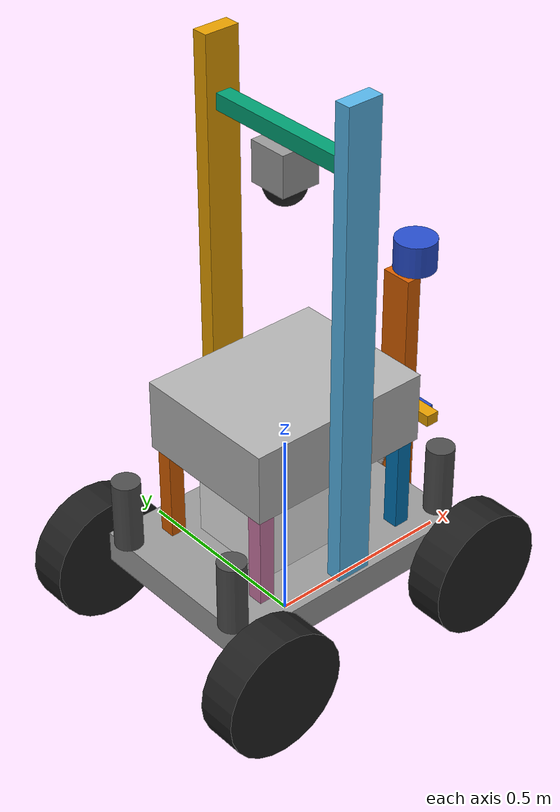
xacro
<?xml version="1.0" ?>

<!-- This Xacro file uses the custom plugin for skid steer drive
      for a rover robot model -->
<!-- Author Muhammad Mursaleen -->
<!-- email  muhammadmursaleen09@gmail.com -->

<robot name="custom_skid_steer_drive" xmlns:xacro="http://ros.org/wiki/xacro">

   <!-- define the name of your package below -->
    <xacro:property name="package_name" default="rover_description"/>

    <!--  define the name of your robot below-->
    <xacro:property name="robot_name" default="rover_robot"/>

    <!-- !!!!!! Above things are important, so use them in correct way !!!!!! -->

  <!-- Add the defination of robot with links and joints  -->
    <xacro:include filename="$(find ${package_name})/urdf/rover_macro.xacro" />

  <!-- Sensors -->

    <xacro:include filename="$(find ${package_name})/urdf/robosense_bpearl.xacro" />
    <!-- to trun gazebo plugins for lidar bpearl uncomment the line below   -->

    <xacro:include filename="$(find ${package_name})/urdf/robosense_rs_16.xacro" />
    <!-- to trun gazebo plugins for lidar rs_16 uncomment the line below   -->
    <xacro:lidar_rs_16_sensor_plugin/>

    <xacro:include filename="$(find ${package_name})/urdf/intelrealsense_t265.xacro" />
    <!-- to trun gazebo plugins for camera t_265 uncomment the line below   -->

  <!-- Add custom plugin for skid steer drive -->
    <xacro:include filename="$(find ${package_name})/urdf/wheel_rps_controller_macro.xacro" />

</robot>

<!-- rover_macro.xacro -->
<!-- This is a xacro file that contains defination of all links & joints
      for a rover robot model -->
<!-- Author Muhammad Mursaleen -->
<!-- email  muhammadmursaleen09@gmail.com -->

  <robot name="rover" xmlns:xacro="http://ros.org/wiki/xacro">

    <!-- properties, materials & inertial parameters -->
    <xacro:include filename="$(find ${package_name})/urdf/inertia_parameters_macro.xacro" />
    <xacro:include filename="$(find ${package_name})/urdf/properties.xacro" />
    <xacro:include filename="$(find ${package_name})/urdf/materials.xacro" />

    <!-- Links & Joints -->

  <!-- Define a macro named "empty_link" as a base link-->
  <xacro:macro name="empty_link" params="link_name">
    <link name="${link_name}">
      <origin xyz="0 0 0"/>
    </link>
  </xacro:macro>

  <!-- Define parent link as an empty link at (0, 0, 0) -->
  <xacro:empty_link link_name="base_link"/>

  <!-- Define a macro named "robot_base_link" for a link with a box shape at
  (0 0 ${base_height} ) -->
  <xacro:macro name="robot_base_link" params=" parent">
    <link name="${robot_name}_base_link">
      <origin xyz="0 0 0"/>
      <visual>
        <geometry>
          <box size="0.67 0.495 0.08"/>
        </geometry>
      </visual>

      <collision>
        <geometry>
          <box size="0.67 0.495 0.08"/>
        </geometry>
      </collision>

      <xacro:box_inertia m="${base_mass}"  d="0.67 " w="0.495" h="0.08"/>

      <material name="Gray">
          <color rgba="0.5 0.5 0.5 1.0"/>
        </material>

    </link>

    <!-- Add a joint between parent and ${robot_name}_base_link -->
    <joint name="${parent}_to_${robot_name}_base_link" type="fixed">
      <parent link="${parent}"/>
      <child link="${robot_name}_base_link"/>
      <origin xyz="0 0 ${base_height}"/>
    </joint>
  </xacro:macro>

  <!-- Use the "robot_base_link" macro to create a link named "my_robot_base_link" -->
  <xacro:robot_base_link  parent="base_link"/>

  <!-- Wheel Started -->
  <!-- Define a macro named "Wheel" for a motor link and joint -->
    <xacro:macro name="wheel" params=" f_or_b l_or_r f_or_b_reflect l_or_r_reflect parent">
      <link name="${robot_name}_${l_or_r}_${f_or_b}_wheel_link">
        <origin xyz="0 0 0"/>
        <visual>
          <geometry>
            <cylinder radius="${wheel_radius}" length="${wheel_lenght}"/>
          </geometry>
        </visual>
        <collision>
          <geometry>
            <cylinder radius="${wheel_radius}" length="0.01"/>
          </geometry>
           <surface>
            <!-- This friction pamareter don't contain reliable data!! -->
            <friction>
              <ode>
                <mu>100000.0</mu>
                <mu2>100000.0</mu2>
                <fdir1>0 0 0</fdir1>
                <slip1>0.0</slip1>
                <slip2>0.0</slip2>
              </ode>
            </friction>
            <contact>
              <ode>
                <soft_cfm>0</soft_cfm>
                <soft_erp>0.2</soft_erp>
                <kp>1e+5</kp>
                <kd>1</kd>
                <max_vel>0.01</max_vel>
                <min_depth>0.001</min_depth>
              </ode>
            </contact>
          </surface>
        </collision>
        <xacro:cylinder_inertia m="${wheel_mass}" r="${wheel_radius}" h="${wheel_lenght}"/>
        <material name="Gray">
          <color rgba="1 1 1 1.0"/>
        </material>

      </link>

      <!-- Add a joint between parent and wheel_link -->
      <joint name="${robot_name}_${l_or_r}_${f_or_b}_wheel_joint" type="continuous">
        <parent link="${parent}"/>
        <child link="${robot_name}_${l_or_r}_${f_or_b}_wheel_link"/>
        <origin xyz="${f_or_b_reflect} ${l_or_r_reflect} ${wheel_radius}" rpy="1.5708 0 0"/>
        <axis xyz="0 0 -1" />
        <limit effort="88" velocity="14" />

      </joint>
    </xacro:macro>

    <!-- front left wheel-->
    <xacro:wheel  parent="base_link" l_or_r="left" f_or_b="front"
        l_or_r_reflect="${wheel_left_pose}" f_or_b_reflect="${wheel_front_pose}"/>

    <!-- Front Right wheel -->
    <xacro:wheel  parent="base_link" l_or_r="right" f_or_b="front"
        l_or_r_reflect="${-wheel_left_pose}" f_or_b_reflect="${wheel_front_pose}"/>

    <!-- back left wheel-->
    <xacro:wheel  parent="base_link" l_or_r="left" f_or_b="back"
        l_or_r_reflect="${wheel_left_pose}" f_or_b_reflect="${-wheel_front_pose}"/>

    <!-- Back Right wheel -->
    <xacro:wheel  parent="base_link" l_or_r="right" f_or_b="back"
        l_or_r_reflect="${-wheel_left_pose}" f_or_b_reflect="${-wheel_front_pose}"/>

    <!-- Wheel ended -->

  <!-- motor Started -->
  <!-- Define a macro named "motor" for a motor link and joint -->
    <xacro:macro name="motor" params=" f_or_b l_or_r f_or_b_reflect l_or_r_reflect parent">
      <link name="${robot_name}_${l_or_r}_${f_or_b}_motor_link">
        <origin xyz="0 0 0"/>
        <visual>
          <geometry>
            <cylinder radius="${motor_radius}" length="${motor_lenght}"/>
          </geometry>
        </visual>
        <collision>
          <geometry>
            <cylinder radius="${motor_radius}" length="${motor_lenght}"/>
          </geometry>
        </collision>
        <xacro:cylinder_inertia m="${motor_mass}" r="${motor_radius}" h="${motor_lenght}"/>
        <material name="Gray">
          <color rgba="0.5 0.5 0.5 1.0"/>
        </material>
      </link>
      <!-- Add a joint between parent and motor_link  -->
      <joint name="${robot_name}_${l_or_r}_${f_or_b}_motor_joint" type="fixed">
        <parent link="${parent}"/>
        <child link="${robot_name}_${l_or_r}_${f_or_b}_motor_link"/>
        <origin xyz="${f_or_b_reflect} ${l_or_r_reflect} ${motor_height}" rpy="0 0 0"/>
      </joint>
    </xacro:macro>

    <!-- front left motor-->
    <xacro:motor  parent="${robot_name}_base_link" l_or_r="left" f_or_b="front"
        l_or_r_reflect="${motor_left_pose}" f_or_b_reflect="${motor_front_pose}"/>

    <!-- Front Right motor -->
    <xacro:motor  parent="${robot_name}_base_link" l_or_r="right" f_or_b="front"
        l_or_r_reflect="${-motor_left_pose}" f_or_b_reflect="${motor_front_pose}"/>

    <!-- back left motor-->
    <xacro:motor  parent="${robot_name}_base_link" l_or_r="left" f_or_b="back"
        l_or_r_reflect="${motor_left_pose}" f_or_b_reflect="${-motor_front_pose}"/>

    <!-- Back Right motor -->
    <xacro:motor  parent="${robot_name}_base_link" l_or_r="right" f_or_b="back"
        l_or_r_reflect="${-motor_left_pose}" f_or_b_reflect="${-motor_front_pose}"/>

    <!-- motor ended -->

  <!-- Battery -->
  <!-- Define a macro named "battery" for a link with a box shape at
  (0 0 ${battery_height}) -->
  <xacro:macro name="battery" params=" parent">
    <link name="${robot_name}_battery_link">
      <origin xyz="0 0 0"/>
      <visual>
        <geometry>
          <box size="0.32 0.24 0.2"/>
        </geometry>
      </visual>
      <collision>
        <geometry>
          <box size="0.32 0.24 0.2"/>
        </geometry>
      </collision>
      <xacro:box_inertia m="${battery_mass}"  d="0.32 " w="0.24" h="0.2"/>
      <material name="Gray">
          <color rgba="0.5 0.5 0.5 1.0"/>
        </material>
    </link>

    <!-- Add a joint between parent and ${robot_name}_base_link -->
        <joint name="${parent}_to_${robot_name}_battery_link" type="fixed">
          <parent link="${parent}"/>
          <child link="${robot_name}_battery_link"/>
          <origin xyz="0 0 ${battery_height}"/>
        </joint>
    </xacro:macro>

    <!-- Use the "robot_base_link" macro to create a link for battery -->
    <xacro:battery  parent="${robot_name}_base_link"/>

    <!-- Battery Ended-->

    <!-- side_bar_ Started for the support of controll Box-->
    <!-- Define a macro named "Wheel" for a side_bar_ link and joint -->
    <xacro:macro name="side_bar" params=" f_or_b l_or_r f_or_b_reflect l_or_r_reflect parent">
      <link name="${robot_name}_${l_or_r}_${f_or_b}_side_bar_link">
        <origin xyz="0 0 0"/>
        <visual>
          <geometry>
            <box size="0.04 0.04 0.24"/>
          </geometry>
        </visual>
        <collision>
          <geometry>
            <box size="0.04 0.04 0.24"/>
          </geometry>
        </collision>
        <xacro:box_inertia m="${side_bar_mass}"  d="0.04 " w="0.04" h="0.24"/>
        <material name="Gray">
          <color rgba="0.5 0.5 0.5 1.0"/>
        </material>
      </link>

     <!-- Add a joint between parent and side_bar_link  -->
    <joint name="${robot_name}_${l_or_r}_${f_or_b}_side_bar_joint" type="fixed">
        <parent link="${parent}"/>
        <child link="${robot_name}_${l_or_r}_${f_or_b}_side_bar_link"/>
        <origin xyz="${f_or_b_reflect} ${l_or_r_reflect} ${side_bar_height}" rpy="0 0 0"/>
    </joint>
    </xacro:macro>

    <!-- front left side_bar-->
    <xacro:side_bar  parent="${robot_name}_base_link" l_or_r="left" f_or_b="front"
        l_or_r_reflect="${side_bar_left_pose}" f_or_b_reflect="${side_bar_front_pose}"/>

    <!-- Front Right side_bar -->
    <xacro:side_bar  parent="${robot_name}_base_link" l_or_r="right" f_or_b="front"
        l_or_r_reflect="${-side_bar_left_pose}" f_or_b_reflect="${side_bar_front_pose}"/>

    <!-- back left side_bar-->
    <xacro:side_bar  parent="${robot_name}_base_link" l_or_r="left" f_or_b="back"
        l_or_r_reflect="${side_bar_left_pose}" f_or_b_reflect="${-side_bar_front_pose}"/>

    <!-- Back Right side_bar -->
    <xacro:side_bar  parent="${robot_name}_base_link" l_or_r="right" f_or_b="back"
        l_or_r_reflect="${-side_bar_left_pose}" f_or_b_reflect="${-side_bar_front_pose}"/>

    <!-- side_bar ended -->

    <!-- controller_box -->
    <!-- Define a macro named "robot_base_link" for a link with a box shape at (0, 1, 1) -->
    <xacro:macro name="controller_box" params=" parent">
      <link name="${robot_name}_controller_box_link">
        <origin xyz="0 0 0"/>
        <visual>
          <geometry>
            <box size="0.48 0.38 0.18"/>
          </geometry>
        </visual>
        <collision>
          <geometry>
            <box size="0.48 0.38 0.18"/>
          </geometry>
        </collision>
        <xacro:box_inertia m="${controller_box_mass}"  d="0.48 " w="0.38" h="0.18"/>
        <material name="Gray">
            <color rgba="0.5 0.5 0.5 1.0"/>
          </material>
      </link>

    <!-- Add a joint between parent and ${robot_name}_base_link -->
      <joint name="${parent}_to_${robot_name}_controller_box_link" type="fixed">
        <parent link="${parent}"/>
        <child link="${robot_name}_controller_box_link"/>
        <origin xyz="0 0 ${controller_box_height}"/>
      </joint>
    </xacro:macro>

    <!-- Use the "robot_base_link" macro to create a link named "my_robot_base_link" -->
    <xacro:controller_box  parent="${robot_name}_base_link"/>

    <!-- controller_box Ended-->

</robot>

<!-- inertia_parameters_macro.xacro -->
<!-- This is a xacro file for defining all inertia parameters for a rover
      robot model -->

<!-- Author Muhammad Mursaleen -->
<!-- email  muhammadmursaleen09@gmail.com -->

<robot name="inertia" xmlns:xacro="http://ros.org/wiki/xacro">

	<!-- Mass of All links in kg -->

    <!-- Approximate Masses  -->
    <xacro:property name="base_mass" default="15"/>
    <xacro:property name="wheel_mass" default="6"/>
    <xacro:property name="motor_mass" default="3"/>
    <xacro:property name="battery_mass" default="20"/>
    <xacro:property name="side_bar_mass" default="1"/>
    <xacro:property name="controller_box_mass" default="1"/>

    <!-- Fake masses -->

    <!-- Masses End-->

    <!-- Define intertial property macros  -->
     <!-- inertia of box: mass = m, d/lenght =x, w/width = y, h/height =z-->
    <xacro:macro name="box_inertia" params="m w h d">
      <inertial>
        <origin xyz="0 0 0" rpy="0 0 0"/>
        <mass value="${m}"/>
        <inertia ixx="${(m/12) * (h*h + w*w)}" ixy="0.0" ixz="0.0" iyy="${(m/12) * (h*h + d*d)}" iyz="0.0" izz="${(m/12) * (w*w + d*d)}"/>
      </inertial>
    </xacro:macro>

    <!-- inertia of cylinder: mass = m, r/radius =x, r/radius = y, h/height =z-->
    <xacro:macro name="cylinder_inertia" params="m r h reflect:=0">
      <inertial>
        <origin xyz="0 0 0" rpy="${reflect*pi/2} 0 0" />
        <mass value="${m}"/>
        <inertia ixx="${(m/12) * (3*r*r + h*h)}" ixy = "0" ixz = "0" iyy="${(m/12) * (3*r*r + h*h)}" iyz = "0" izz="${(m/2) * (r*r)}"/>
      </inertial>
    </xacro:macro>

    <!-- inertia of sphere:  mass = m, r/radius =x, r/radius = y, r/radius =z-->
    <xacro:macro name="sphere_inertia" params="m r">
      <inertial>
        <mass value="${m}"/>
        <inertia ixx="${(2/5) * m * (r*r)}" ixy="0.0" ixz="0.0" iyy="${(2/5) * m * (r*r)}" iyz="0.0" izz="${(2/5) * m * (r*r)}"/>
      </inertial>
    </xacro:macro>

</robot >

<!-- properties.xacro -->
<!-- This is a xacro file for defining all the properties related to lenghts and poses
      for a rover robot model -->
<!-- Author Muhammad Mursaleen -->
<!-- email  muhammadmursaleen09@gmail.com -->

<robot name="properties_for_rover" xmlns:xacro="http://ros.org/wiki/xacro">

    <!-- distances of all the joints from the center of the base link -->
    <!-- & lenghts and radius of different links are defined below -->
    <xacro:property name="wheel_front_pose" default="0.315000"/>
    <xacro:property name="wheel_left_pose" default="0.315000"/>
    <xacro:property name="wheel_radius" default="0.16"/>
    <xacro:property name="wheel_lenght" default="0.1"/>
    <xacro:property name="wheel_separation" default="0.63"/>
    <xacro:property name="base_height" default="0.22"/>

    <xacro:property name="motor_front_pose" default="0.32"/>
    <xacro:property name="motor_left_pose" default="0.19"/>
    <xacro:property name="motor_radius" default="0.035"/>
    <xacro:property name="motor_lenght" default="0.18"/>
    <xacro:property name="motor_height" default="0.13"/>

    <xacro:property name="battery_height" default="0.13"/>

    <xacro:property name="side_bar_front_pose" default="0.21"/>
    <xacro:property name="side_bar_left_pose" default="0.16"/>
    <xacro:property name="side_bar_height" default="0.16"/>

    <xacro:property name="controller_box_height" default="0.37"/>

</robot >

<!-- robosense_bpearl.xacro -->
<!-- This is a xacro file for defining robosense bpearl lidar with all supportive
  links for a rover robot model -->
<!-- Author Muhammad Mursaleen -->
<!-- email  muhammadmursaleen09@gmail.com -->

<robot name="robosense_bpearl" xmlns:xacro="http://ros.org/wiki/xacro">

  <xacro:property name="robot_name" default="rover_robot"/>
  <xacro:property name="side_lidar_bar_front_pose" default="0.0"/>
  <xacro:property name="side_lidar_bar_left_pose" default="0.22"/>
  <xacro:property name="side_lidar_bar_height" default="0.64"/>

  <!-- in future to chnae height of the lidar then change the
    "lidar_top_bar_height value" -->
  <xacro:property name="lidar_top_bar_height" default="1.30"/>
  <xacro:property name="lidar_top_box_height" default="-0.07"/>
  <xacro:property name="lidar_top_bpearl_sensor_height" default="-0.12"/>

  <!-- masses -->
    <xacro:property name="side_lidar_bar_mass" default="4"/>
    <xacro:property name="lidar_top_bar_mass" default="1"/>
    <xacro:property name="lidar_top_box_mass" default=".5"/>
    <xacro:property name="lidar_top_bpearl_sensor_mass" default=".5"/>
  <!-- masess ended -->

  <!-- Ranges -->

  <!-- Actual Max range of bpearl = 30 -->
  <xacro:property name="lidar_bpearl_sensor_max_range" default="30"/>
  <!-- Actual Min range of bpearl = 0.1 -->
  <xacro:property name="lidar_bpearl_sensor_min_range" default="0.1"/>
  <!-- Ranges End -->

  <!-- Gazebo Color  -->

  <gazebo reference="${robot_name}_lidar_top_box_link">
    <material>Gazebo/Grey</material>
  </gazebo>

  <gazebo reference="${robot_name}_lidar_top_bpearl_sensor_link">
    <material>Gazebo/Black</material>
  </gazebo>

  <!-- Gazebo Color ended -->

  <!-- side_lidar_bar_ Started -->
  <!-- Define a macro named "Wheel" for a side_lidar_bar_ link and joint -->
    <xacro:macro name="side_lidar_bar" params=" f_or_b l_or_r f_or_b_reflect l_or_r_reflect parent">
      <link name="${robot_name}_${l_or_r}_${f_or_b}_side_lidar_bar_link">
        <origin xyz="0 0 0"/>
        <visual>
          <geometry>
            <box size="0.09 0.04 1.2"/>
          </geometry>
        </visual>
        <collision>
          <geometry>
            <box size="0.09 0.04 1.2"/>
          </geometry>
        </collision>
        <xacro:box_inertia m="${side_lidar_bar_mass}"  d="0.09 " w="0.04" h="1.2"/>
      </link>

    <joint name="${robot_name}_${l_or_r}_${f_or_b}_side_lidar_bar_joint" type="fixed">
        <parent link="${parent}"/>
        <child link="${robot_name}_${l_or_r}_${f_or_b}_side_lidar_bar_link"/>
        <origin xyz="${f_or_b_reflect} ${l_or_r_reflect} ${side_lidar_bar_height}" rpy="0 0 0"/>
    </joint>
    </xacro:macro>

    <!-- front left side_lidar_bar-->
    <xacro:side_lidar_bar  parent="${robot_name}_base_link" l_or_r="left" f_or_b="front"
        l_or_r_reflect="${side_lidar_bar_left_pose}" f_or_b_reflect="0"/>

    <!-- Front Right side_lidar_bar -->
    <xacro:side_lidar_bar  parent="${robot_name}_base_link" l_or_r="right" f_or_b="front"
        l_or_r_reflect="${-side_lidar_bar_left_pose}" f_or_b_reflect="0"/>

    <!-- side_lidar_bar ended -->

  <!-- lidar_top_bar -->
  <!-- Define a macro named "robot_base_link" for a link with a box shape at (0, 1, 1) -->
  <xacro:macro name="lidar_top_bar" params=" parent">
    <link name="${robot_name}_lidar_top_bar_link">
      <origin xyz="0 0 0"/>
      <visual>
        <geometry>
          <box size="0.04 0.44 0.04"/>
        </geometry>
      </visual>
      <collision>
        <geometry>
          <box size="0.04 0.44 0.04"/>
        </geometry>
      </collision>
      <xacro:box_inertia m="${lidar_top_bar_mass}"  d="0.04 " w="0.44" h="0.04"/>
    </link>

    <!-- Add a joint between parent and ${robot_name}_base_link -->
        <joint name="${parent}_to_${robot_name}_lidar_top_bar_link" type="fixed">
          <parent link="${parent}"/>
          <child link="${robot_name}_lidar_top_bar_link"/>
          <origin xyz="0 0 ${lidar_top_bar_height}"/>
        </joint>
    </xacro:macro>

      <!-- Use the "robot_base_link" macro to create a link named "my_robot_base_link" -->
    <xacro:lidar_top_bar  parent="base_link"/>

    <!-- lidar_top_bar Ended-->

  <!-- lidar_top_box -->
  <!-- Define a macro named "robot_base_link" for a link with a box shape at (0, 1, 1) -->
  <xacro:macro name="lidar_top_box" params=" parent">
    <link name="${robot_name}_lidar_top_box_link">
      <origin xyz="0 0 0"/>
      <visual>
        <geometry>
          <box size="0.1 0.1 0.1"/>
        </geometry>
      </visual>
      <collision>
        <geometry>
          <box size="0.1 0.1 0.1"/>
        </geometry>
      </collision>
    <xacro:box_inertia m="${lidar_top_box_mass}"  d="0.1 " w="0.1" h="0.1"/>
  </link>

  <!-- Add a joint between parent and ${robot_name}_base_link -->
      <joint name="${parent}_to_${robot_name}_lidar_top_box_link" type="fixed">
        <parent link="${parent}"/>
        <child link="${robot_name}_lidar_top_box_link"/>
        <origin xyz="0 0 ${lidar_top_box_height}"/>
      </joint>
  </xacro:macro>

    <!-- Use the "robot_base_link" macro to create a link named "my_robot_base_link" -->
  <xacro:lidar_top_box  parent="${robot_name}_lidar_top_bar_link"/>

  <!-- lidar_top_box Ended-->

  <!-- lidar_top_bpearl_sensor link-->
  <!-- Define a macro named "robot_base_link" for a link with a box shape at (0, 1, 1) -->
  <xacro:macro name="lidar_top_bpearl_sensor" params=" parent">
    <link name="${robot_name}_lidar_top_bpearl_sensor_link">
      <origin xyz="0 0 0"/>
      <visual>
        <geometry>
          <sphere radius="0.05"/>
        </geometry>
      </visual>
      <collision>
        <geometry>
          <sphere radius="0.05"/>

        </geometry>
      </collision>
      <xacro:sphere_inertia m="${lidar_top_bpearl_sensor_mass}"  r="0.5"/>
    </link>

    <!-- Add a joint between parent and ${robot_name}_base_link -->
        <joint name="${parent}_to_${robot_name}_lidar_top_bpearl_sensor_link" type="fixed">
          <parent link="${parent}"/>
          <child link="${robot_name}_lidar_top_bpearl_sensor_link"/>
          <origin xyz="0 0 ${lidar_top_bpearl_sensor_height}"/>
        </joint>
    </xacro:macro>

      <!-- Use the "robot_base_link" macro to create a link named "my_robot_base_link" -->
    <xacro:lidar_top_bpearl_sensor  parent="${robot_name}_lidar_top_bar_link"/>

  <!-- Gazebo plugin for 3d lidar bpearl -->
  <xacro:macro name="lidar_bpearl_sensor_plugin" >
    <gazebo reference="${robot_name}_lidar_top_bpearl_sensor_link">
        <sensor type="ray" name="block_laser_sensor">
          <pose>0 0 0 0 0 0</pose>
          <visualize>false</visualize>
          <update_rate>5</update_rate>
          <ray>
            <scan>
              <horizontal>
                <samples>360</samples>
                <resolution>1</resolution>
                <min_angle>-3.14</min_angle>
                <max_angle>0</max_angle>
              </horizontal>
              <vertical>
                <samples>64</samples>
                <resolution>1</resolution>
                <min_angle>-3.14</min_angle>
                <max_angle>0</max_angle>
              </vertical>
            </scan>

            <range>
              <min>${lidar_bpearl_sensor_min_range}</min>
              <max>${lidar_bpearl_sensor_max_range}</max>
              <resolution>0.01</resolution>
            </range>

            <noise>
              <type>gaussian</type>
              <mean>0.0</mean>
              <stddev>0.01</stddev>
            </noise>
          </ray>
          <plugin name="robosense_bpearl_lidar" filename="libgazebo_ros_velodyne_laser.so">
            <updateRate>5</updateRate>
            <topicName>/robosense_bpearl_lidar/out</topicName>
            <frameName>${robot_name}_lidar_top_bpearl_sensor_link</frameName>

          </plugin>
        </sensor>
      </gazebo>
    </xacro:macro>

    <!-- lidar_top_bpearl_sensor Ended-->

</robot>

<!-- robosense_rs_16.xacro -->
<!-- This is a xacro file for defining robosense RS 16 lidar with all supportive
  links for a rover robot model -->
<!-- Author Muhammad Mursaleen -->
<!-- email  muhammadmursaleen09@gmail.com -->

<robot name="rs_lidar" xmlns:xacro="http://ros.org/wiki/xacro">

  <!-- properties -->

  <xacro:property name="lidar_rs_16_bar_height" default="0.2765"/>
  <xacro:property name="lidar_rs_16_sensor_height" default="0.3565"/>
  <xacro:property name="lidar_rs_16_bar_mass" default="3"/>
  <xacro:property name="lidar_rs_16_sensor_mass" default="0.87"/>

  <!-- Actual Max range of rs_16 = 150 -->
  <xacro:property name="lidar_rs_16_sensor_max_range" default="5"/>
  <!-- Actual Min range of rs_16 = .40 -->
  <xacro:property name="lidar_rs_16_sensor_min_range" default="0.4"/>

  <!-- Gazebo Color  -->

  <gazebo reference="${robot_name}_lidar_rs_16_sensor_link">
    <material>Gazebo/Blue</material>
  </gazebo>

  <!-- lidar_rs_16_bar -->

  <!-- Define a macro named "robot_base_link" for a link with a box shape at (0, 1, 1) -->
  <xacro:macro name="lidar_rs_16_bar" params=" parent">
    <link name="${robot_name}_lidar_rs_16_bar_link">
      <origin xyz="0 0 0"/>
      <visual>
        <geometry>
          <box size="0.04 0.08 0.633"/>
        </geometry>
      </visual>
      <collision>
        <geometry>
          <box size="0.04 0.08 0.633"/>
        </geometry>
      </collision>
      <xacro:box_inertia m="${lidar_rs_16_bar_mass}"  d="0.04 " w="0.08" h="0.633"/>
    </link>

    <!-- Add a joint between parent and ${robot_name}_base_link -->
        <joint name="${parent}_to_${robot_name}_lidar_rs_16_bar_link" type="fixed">
          <parent link="${parent}"/>
          <child link="${robot_name}_lidar_rs_16_bar_link"/>
          <origin xyz="0.36 0 ${lidar_rs_16_bar_height}"/>
        </joint>
    </xacro:macro>

      <!-- Use the "robot_base_link" macro to create a link named "my_robot_base_link" -->
    <xacro:lidar_rs_16_bar  parent="${robot_name}_base_link"/>

    <!-- lidar_rs_16_sensor -->

  <!-- Define a macro named "robot_base_link" for a link with a box shape at (0, 1, 1) -->
  <xacro:macro name="lidar_rs_16_sensor" params=" parent">
    <link name="${robot_name}_lidar_rs_16_sensor_link">
      <origin xyz="0 0 0"/>
      <visual>
        <geometry>
          <cylinder length="0.08" radius="0.0525"/>
        </geometry>
      </visual>
      <collision>
        <geometry>
          <cylinder length="0.08" radius="0.0525"/>
        </geometry>
      </collision>
      <xacro:cylinder_inertia m="${lidar_rs_16_sensor_mass}" r="0.0525" h="0.08"/>
    </link>

  <!-- Add a joint between parent and ${robot_name}_base_link -->
      <joint name="${parent}_to_${robot_name}_lidar_rs_16_sensor_link" type="fixed">
        <parent link="${parent}"/>
        <child link="${robot_name}_lidar_rs_16_sensor_link"/>
        <origin xyz="0.04 0 ${lidar_rs_16_sensor_height}"/>
      </joint>
  </xacro:macro>

    <!-- Use the "robot_base_link" macro to create a link named "my_robot_base_link" -->
  <xacro:lidar_rs_16_sensor  parent="${robot_name}_lidar_rs_16_bar_link"/>

  <!-- Gazebo plugin for 3d lidar -->
  <xacro:macro name="lidar_rs_16_sensor_plugin" >
    <gazebo reference="${robot_name}_lidar_rs_16_sensor_link">
        <sensor type="ray" name="block_laser_sensor">
          <pose>0 0 0 0 0 0</pose>
          <visualize>false</visualize>
          <update_rate>5</update_rate>
          <ray>
            <scan>
              <horizontal>
                <samples>360</samples>
                <resolution>1</resolution>
                <min_angle>-3.14</min_angle>
                <max_angle>3.14</max_angle>
              </horizontal>
              <vertical>
                <samples>15</samples>
                <resolution>1</resolution>
                <min_angle>-0.261799</min_angle>
                <max_angle>0.261799</max_angle>
              </vertical>
            </scan>

            <range>
              <min>${lidar_rs_16_sensor_min_range}</min>
              <max>${lidar_rs_16_sensor_max_range}</max>
              <resolution>0.02</resolution>
            </range>

            <noise>
              <type>gaussian</type>
              <mean>0.0</mean>
              <stddev>0.01</stddev>
            </noise>
          </ray>
          <plugin name="robosense_rs_16_lidar" filename="libgazebo_ros_velodyne_laser.so">
            <updateRate>5</updateRate>
            <topicName>/robosense_rs_16_lidar/out</topicName>
            <frameName>${robot_name}_lidar_rs_16_sensor_link</frameName>
          </plugin>
        </sensor>
      </gazebo>
    </xacro:macro>

    <!-- lidar_rs_16_sensor Ended-->

</robot>

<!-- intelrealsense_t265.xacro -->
<!-- This is a xacro file for defining intel realsense t265 with all supportive
  links for a rover robot model -->
<!-- Author Muhammad Mursaleen -->
<!-- email  muhammadmursaleen09@gmail.com -->

<robot name="dom_lidar" xmlns:xacro="http://ros.org/wiki/xacro">

  <!-- properties -->

  <xacro:property name="intelrealsense_t265_bar_height" default="0.09"/>
  <xacro:property name="intelrealsense_t265_bar_mass" default="1.5"/>
  <xacro:property name="intelrealsense_t265_sensor_mass" default="0.057"/>
  <xacro:property name="intelrealsense_t265_sensor_support_mass" default="0.1"/>
  <xacro:property name="camera_name" default="intelrealsense_t265_sensor"/>

  <!-- Gazebo Color  -->

  <gazebo reference="${robot_name}_intelrealsense_t265_sensor_link">
    <material>Gazebo/Blue</material>
  </gazebo>

  <!-- intelrealsense_t265_bar -->

  <!-- Define a macro named "robot_base_link" for a link with a box shape at (0, 1, 1) -->
  <xacro:macro name="intelrealsense_t265_bar" params=" parent">
    <link name="${robot_name}_intelrealsense_t265_bar_link">
      <origin xyz="0 0 0"/>
      <visual>
        <geometry>
          <box size="0.04 0.08 0.26"/>
        </geometry>
      </visual>
      <collision>
        <geometry>
          <box size="0.04 0.08 0.26"/>
        </geometry>
      </collision>
      <xacro:box_inertia m="${intelrealsense_t265_bar_mass}"  d="0.04 " w="0.08" h="0.26"/>
    </link>

    <!-- Add a joint between parent and ${robot_name}_base_link -->
        <joint name="${parent}_to_${robot_name}_intelrealsense_t265_bar_link" type="fixed">
          <parent link="${parent}"/>
          <child link="${robot_name}_intelrealsense_t265_bar_link"/>
          <origin xyz="0.36 0 ${intelrealsense_t265_bar_height}"/>
        </joint>
    </xacro:macro>

      <!-- Use the "robot_base_link" macro to create a link named "my_robot_base_link" -->
    <xacro:intelrealsense_t265_bar  parent="${robot_name}_base_link"/>

    <!-- intelrealsense_t265_sensor -->

  <!-- Define a macro named "robot_base_link" for a link with a box shape at (0, 1, 1) -->
  <xacro:macro name="intelrealsense_t265_sensor_support" params=" parent">
    <link name="${robot_name}_intelrealsense_t265_sensor_support_link">
      <origin xyz="0 0 0"/>
      <visual>
        <geometry>
          <box size="0.035 0.17 0.03 "/>
        </geometry>
      </visual>
      <collision>
        <geometry>
          <box size="0.035 0.17 0.03 "/>
        </geometry>
      </collision>
      <xacro:box_inertia m="${intelrealsense_t265_sensor_support_mass}"  d="0.035 " w="0.17" h="0.03"/>
   </link>

  <!-- Add a joint between parent and ${robot_name}_base_link -->
      <joint name="${parent}_to_${robot_name}_intelrealsense_t265_sensor_support_link" type="fixed">
        <parent link="${parent}"/>
        <child link="${robot_name}_intelrealsense_t265_sensor_support_link"/>
        <origin xyz="0.038 0 0.115"/>
      </joint>
  </xacro:macro>

    <!-- Use the "robot_base_link" macro to create a link named "my_robot_base_link" -->
  <xacro:intelrealsense_t265_sensor_support
    parent="${robot_name}_intelrealsense_t265_bar_link"/>

  <!-- Define a macro named "robot_base_link" for a link with a box shape at (0, 1, 1) -->
  <xacro:macro name="intelrealsense_t265_sensor" params=" parent">
    <link name="${robot_name}_intelrealsense_t265_sensor_link">
      <origin xyz="0 0 0"/>
      <visual>
        <geometry>
          <box size="0.012 0.108 0.024 "/>
        </geometry>
      </visual>
      <collision>
        <geometry>
          <box size="0.012 0.108 0.024 "/>
        </geometry>
      </collision>
     <xacro:box_inertia m="${intelrealsense_t265_sensor_mass}"  d="0.012 " w="0.108" h="0.024"/>
   </link>

  <!-- Add a joint between parent and ${robot_name}_base_link -->
      <joint name="${parent}_to_${robot_name}_intelrealsense_t265_sensor_link" type="fixed">
        <parent link="${parent}"/>
        <child link="${robot_name}_intelrealsense_t265_sensor_link"/>
        <origin xyz="0.0235 0 0"/>
      </joint>
  </xacro:macro>

    <!-- Use the "robot_base_link" macro to create a link named "my_robot_base_link" -->
  <xacro:intelrealsense_t265_sensor  parent="${robot_name}_intelrealsense_t265_sensor_support_link"/>

  <!-- Gazebo plugin for 3d lidar -->
  <xacro:macro name="intelrealsense_t265_sensor_plugin">
    <gazebo reference="${robot_name}_intelrealsense_t265_sensor_link">
      <sensor name="${robot_name}_camera" type="depth">
        <update_rate>5</update_rate>
        <camera>
          <horizontal_fov>1.047198</horizontal_fov>
          <image>
            <width>640</width>
            <height>480</height>
            <format>R8G8B8</format>
          </image>
          <clip>
            <near>0.05</near>
            <far>3</far>
          </clip>
        </camera>
        <plugin name="${robot_name}_camera_controller" filename="libgazebo_ros_camera.so">
          <baseline>0.2</baseline>
          <alwaysOn>true</alwaysOn>
          <updateRate>1.0</updateRate>
          <cameraName>${camera_name}_ir</cameraName>
          <imageTopicName>/${camera_name}/color/image_raw</imageTopicName>
          <cameraInfoTopicName>/${camera_name}/color/camera_info</cameraInfoTopicName>
          <depthImageTopicName>/${camera_name}/depth/image_raw</depthImageTopicName>
          <depthImageInfoTopicName>/${camera_name}/depth/camera_info</depthImageInfoTopicName>
          <pointCloudTopicName>/${camera_name}/depth/points</pointCloudTopicName>
          <frameName>${robot_name}_intelrealsense_t265_sensor_link</frameName>
          <pointCloudCutoff>0.5</pointCloudCutoff>
          <pointCloudCutoffMax>3.0</pointCloudCutoffMax>
          <distortionK1>0.00000001</distortionK1>
          <distortionK2>0.00000001</distortionK2>
          <distortionK3>0.00000001</distortionK3>
          <distortionT1>0.00000001</distortionT1>
          <distortionT2>0.00000001</distortionT2>
          <CxPrime>0</CxPrime>
          <Cx>0</Cx>
          <Cy>0</Cy>
          <focalLength>0</focalLength>
          <hackBaseline>0</hackBaseline>
        </plugin>
      </sensor>
    </gazebo>
  </xacro:macro>

  <!-- intelrealsense_t265_sensor Ended-->
</robot>
